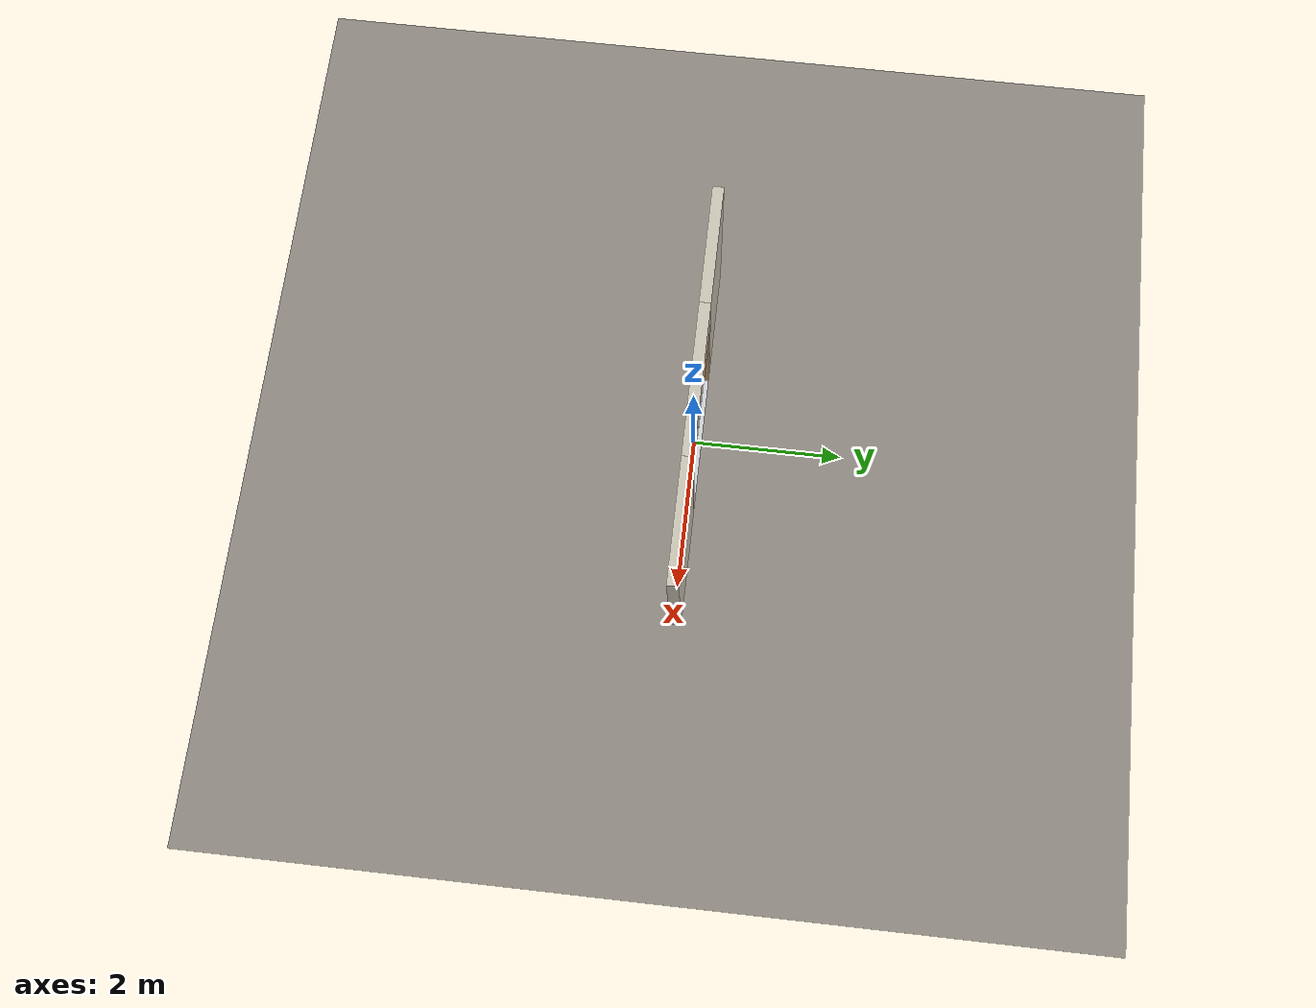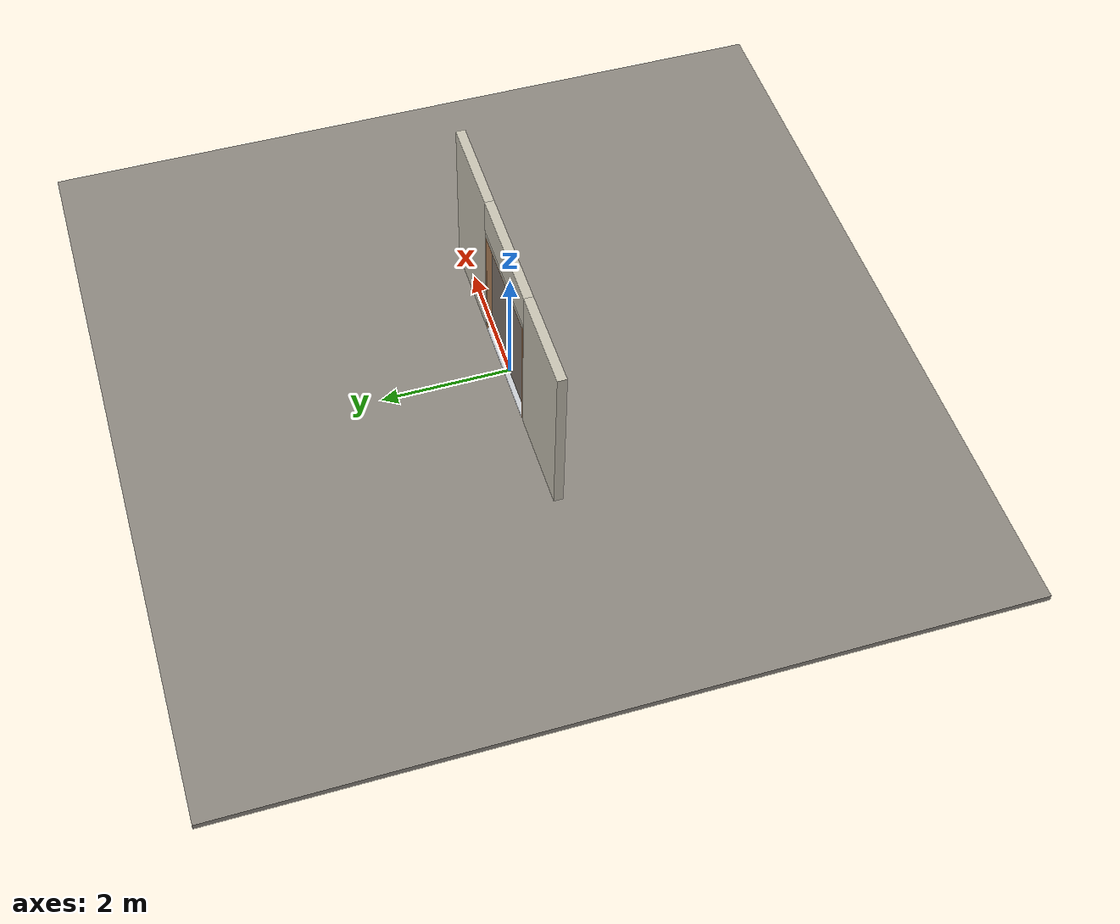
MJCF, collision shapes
<?xml version="1.0" ?>
<mujoco model="db0788_swing_double_minimal">
  <compiler angle="radian" meshdir="../../hardware" texturedir="../../textures" autolimits="true" inertiafromgeom="false"/>
  <option timestep="0.002" integrator="implicitfast" cone="elliptic" impratio="10" noslip_iterations="3">
    <flag multiccd="enable"/>
  </option>
  <size memory="16M"/>
  <default>
    <geom condim="4" solref="0.005 1" solimp="0.95 0.99 0.001"/>
    <joint solreflimit="0.005 1" solimplimit="0.95 0.99 0.001"/>
    <tendon solreflimit="0.005 1"/>
    <equality solref="0.002 1"/>
  </default>
  <visual>
    <headlight ambient="0.4 0.4 0.4" diffuse="0.7 0.7 0.7" specular="0.2 0.2 0.2"/>
    <quality shadowsize="4096"/>
    <map znear="0.01" zfar="60"/>
  </visual>
  <asset>
    <mesh name="pull_2b47e55ff8" file="pull_2b47e55ff8.obj"/>
    <material name="mat_floor" rgba="0.55 0.53 0.5 1" specular="0.2" shininess="0.15" reflectance="0"/>
    <material name="mat_wall" rgba="0.78 0.76 0.7 1" specular="0.2" shininess="0.1" reflectance="0"/>
    <material name="mat_leaf_a" rgba="0.5 0.46 0.425 1" specular="0.2" shininess="0.15" reflectance="0"/>
    <material name="mat_leaf_a_brace" rgba="0.45 0.414 0.383 1" specular="0.2" shininess="0.2" reflectance="0"/>
    <material name="mat_hinge" rgba="0.65 0.66 0.68 1" specular="0.74" shininess="0.5" reflectance="0.36"/>
    <material name="mat_op_black_matte_metal" rgba="0.05 0.05 0.05 1" specular="0.38" shininess="0.3" reflectance="0.12"/>
    <material name="mat_op_brass" rgba="0.85 0.66 0.3 1" specular="0.8" shininess="0.75" reflectance="0.4"/>
    <material name="mat_leaf_b" rgba="0.5 0.46 0.425 1" specular="0.2" shininess="0.15" reflectance="0"/>
    <material name="mat_leaf_b_brace" rgba="0.45 0.414 0.383 1" specular="0.2" shininess="0.2" reflectance="0"/>
    <material name="mat_frame" rgba="0.75 0.55 0.38 1" specular="0.2" shininess="0.45" reflectance="0"/>
    <material name="mat_threshold" rgba="0.8 0.81 0.83 1" specular="0.8" shininess="0.6" reflectance="0.4"/>
    <texture name="skybox" type="skybox" builtin="gradient" rgb1="0.6 0.7 0.85" rgb2="0.9 0.92 0.95" width="256" height="256"/>
  </asset>
  <worldbody>
    <light name="sun" pos="1.5 -2.5 4" dir="-0.3 0.5 -0.8" directional="true" diffuse="0.8 0.8 0.8" specular="0.3 0.3 0.3" castshadow="true"/>
    <light name="fill" pos="-1.5 2.5 3" dir="0.3 -0.5 -0.7" directional="true" diffuse="0.35 0.35 0.4" castshadow="false"/>
    <camera name="robot_view" pos="0 -2.481688 1.709912" xyaxes="1 0 0 0 0.26963 0.962964" fovy="52"/>
    <camera name="far_view" pos="0 2.542687 1.709912" xyaxes="-1 0 0 0 -0.26963 0.962964" fovy="52"/>
    <camera name="iso" pos="-1.909262 -2.079738 2.111862" xyaxes="0.741536 -0.670913 0 0.242917 0.268487 0.932151" fovy="46"/>
    <camera name="detail_handle" pos="0.0735 -0.867 1.33" xyaxes="0.97561 0.219512 0 -0.070934 0.315262 0.94635" fovy="38"/>
    <geom name="floor" type="box" size="6 6 0.05" pos="0 0 -0.05" material="mat_floor" group="0" contype="1" conaffinity="1" friction="0.8 0.005 0.0001" density="2400"/>
    <geom name="wall_left" type="box" size="0.76775 0.0725 1.35" pos="-1.73225 0.0305 1.35" material="mat_wall" group="0" contype="1" conaffinity="1" friction="0.6 0.005 0.0001" density="800"/>
    <geom name="wall_right" type="box" size="0.76775 0.0725 1.35" pos="1.73225 0.0305 1.35" material="mat_wall" group="0" contype="1" conaffinity="1" friction="0.6 0.005 0.0001" density="800"/>
    <geom name="wall_header" type="box" size="0.9645 0.0725 0.2985" pos="0 0.0305 2.4015" material="mat_wall" group="0" contype="1" conaffinity="1" friction="0.6 0.005 0.0001" density="800"/>
    <geom name="jamb_l" type="box" size="0.0095 0.0725 1.0065" pos="-0.914 0.0305 1.0065" material="mat_frame" group="0" contype="1" conaffinity="1" friction="0.6 0.005 0.0001" density="300"/>
    <geom name="jamb_r" type="box" size="0.0095 0.0725 1.0065" pos="0.914 0.0305 1.0065" material="mat_frame" group="0" contype="1" conaffinity="1" friction="0.6 0.005 0.0001" density="300"/>
    <geom name="jamb_head" type="box" size="0.9235 0.0725 0.0095" pos="0 0.0305 2.0225" material="mat_frame" group="0" contype="1" conaffinity="1" friction="0.6 0.005 0.0001" density="300"/>
    <geom name="head_stud" type="box" size="0.9235 0.0725 0.015" pos="0 0.0305 2.047" material="mat_wall" group="0" contype="1" conaffinity="1" friction="0.6 0.005 0.0001" density="500"/>
    <geom name="threshold" type="box" size="0.9235 0.0725 0.0065" pos="0 0.0305 0.0065" material="mat_threshold" group="0" contype="1" conaffinity="1" friction="0.5 0.005 0.0001" density="2700"/>
    <site name="approach_point" pos="0 -1.5 0" quat="1 0 0 0" size="0.05" rgba="0.2 0.9 0.2 0.5" group="4"/>
    <site name="goal_point" pos="0 1.5 0" quat="1 0 0 0" size="0.05" rgba="0.2 0.9 0.2 0.5" group="4"/>
    <site name="door_plane_center" pos="0 0 1.0065" quat="1 0 0 0" size="0.02" rgba="0.2 0.9 0.2 0.5" group="4"/>
    <site name="approach_point_2" pos="0 -1.5 0" quat="1 0 0 0" size="0.05" rgba="0.2 0.9 0.2 0.5" group="4"/>
    <site name="goal_point_2" pos="0 1.5 0" quat="1 0 0 0" size="0.05" rgba="0.2 0.9 0.2 0.5" group="4"/>
    <site name="door_plane_center_2" pos="0 0 1.0065" quat="1 0 0 0" size="0.02" rgba="0.2 0.9 0.2 0.5" group="4"/>
    <site name="approach_point_3" pos="0 -1.5 0" quat="1 0 0 0" size="0.05" rgba="0.2 0.9 0.2 0.5" group="4"/>
    <site name="goal_point_3" pos="0 1.5 0" quat="1 0 0 0" size="0.05" rgba="0.2 0.9 0.2 0.5" group="4"/>
    <site name="door_plane_center_3" pos="0 0 1.0065" quat="1 0 0 0" size="0.02" rgba="0.2 0.9 0.2 0.5" group="4"/>
    <body name="leaf_a" pos="-0.9045 0 0">
      <inertial pos="0.461741 0 1.013937" mass="38.992127" quat="0.50031 -0.50031 -0.499689 -0.499689" diaginertia="2.689710434 12.58840522 15.25859187"/>
      <joint name="leaf_a_hinge" type="hinge" axis="0 0 -1" pos="0.003 -0.029 0" limited="true" range="0 1.396263" damping="0.286983" frictionloss="3.681024" armature="0.02"/>
      <geom name="leaf_a_slab" type="box" size="0.45 0.022 0.996" pos="0.453 0 1.013" material="mat_leaf_a" group="0" contype="1" conaffinity="1" friction="0.45 0.005 0.0001" density="1"/>
      <geom name="leaf_a_pull_n" type="mesh" mesh="pull_2b47e55ff8" pos="0.798 -0.022 1.05" quat="0.707107 0.707107 0 0" material="mat_op_black_matte_metal" group="1" contype="0" conaffinity="0" density="3000"/>
      <geom name="leaf_a_pull_col_n" type="capsule" size="0.006 0.13" pos="0.798 -0.067 1.05" material="mat_op_black_matte_metal" group="3" contype="1" conaffinity="1" rgba="0.8 0.3 0.3 0.25" friction="0.7 0.01 0.0001" density="3000"/>
      <geom name="leaf_a_pull_p" type="mesh" mesh="pull_2b47e55ff8" pos="0.798 0.022 1.05" quat="-0.707107 0.707107 0 0" material="mat_op_black_matte_metal" group="1" contype="0" conaffinity="0" density="3000"/>
      <geom name="leaf_a_pull_col_p" type="capsule" size="0.006 0.13" pos="0.798 0.067 1.05" material="mat_op_black_matte_metal" group="3" contype="1" conaffinity="1" rgba="0.8 0.3 0.3 0.25" friction="0.7 0.01 0.0001" density="3000"/>
      <site name="leaf_a_pull_grip_n" pos="0.798 -0.067 1.05" quat="1 0 0 0" size="0.012" rgba="0.2 0.9 0.2 0.5" group="4"/>
      <site name="leaf_a_pull_grip_p" pos="0.798 0.067 1.05" quat="1 0 0 0" size="0.012" rgba="0.2 0.9 0.2 0.5" group="4"/>
      <site name="leaf_a_edge_mid" pos="0.903 0 0.996" quat="1 0 0 0" size="0.02" rgba="0.2 0.9 0.2 0.5" group="4"/>
    </body>
    <body name="leaf_b" pos="0.9045 0 0">
      <inertial pos="-0.423062 0 1.013" mass="38.72809" quat="-0.5 0.5 0.5 0.5" diaginertia="2.284233274 12.812538978 15.084275953"/>
      <joint name="leaf_b_hinge" type="hinge" axis="0 0 1" pos="-0.003 -0.029 0" limited="true" range="0 0.001" damping="0.286983" frictionloss="3.681024" armature="0.02"/>
      <geom name="leaf_b_edge_1300_wall_n" type="box" size="0.03 0.024 0.01" pos="-0.873 -0.002 1.3" material="mat_leaf_b" group="0" contype="1" conaffinity="1" friction="0.6 0.005 0.0001" density="1"/>
      <geom name="leaf_b_edge_1300_wall_p" type="box" size="0.022 0.003 0.01" pos="-0.881 -0.045 1.3" material="mat_leaf_b" group="0" contype="1" conaffinity="1" friction="0.6 0.005 0.0001" density="1"/>
      <geom name="leaf_b_edge_1300_back" type="box" size="0.009 0.008 0.01" pos="-0.852 -0.034 1.3" material="mat_leaf_b" group="0" contype="1" conaffinity="1" friction="0.6 0.005 0.0001" density="1"/>
      <geom name="leaf_b_edge_seg_0" type="box" size="0.03 0.022 0.6365" pos="-0.873 0 0.6535" material="mat_leaf_b" group="0" contype="1" conaffinity="1" friction="0.6 0.005 0.0001" density="1"/>
      <geom name="leaf_b_edge_seg_1" type="box" size="0.03 0.022 0.3495" pos="-0.873 0 1.6595" material="mat_leaf_b" group="0" contype="1" conaffinity="1" friction="0.6 0.005 0.0001" density="1"/>
      <geom name="leaf_b_slab" type="box" size="0.42 0.022 0.996" pos="-0.423 0 1.013" material="mat_leaf_b" group="0" contype="1" conaffinity="1" friction="0.45 0.005 0.0001" density="1"/>
      <site name="leaf_b_edge_mid" pos="-0.903 0 0.996" quat="1 0 0 0" size="0.02" rgba="0.2 0.9 0.2 0.5" group="4"/>
    </body>
  </worldbody>
  <sensor>
    <jointpos name="leaf_a_hinge_pos" joint="leaf_a_hinge"/>
    <jointvel name="leaf_a_hinge_vel" joint="leaf_a_hinge"/>
    <jointpos name="leaf_b_hinge_pos" joint="leaf_b_hinge"/>
    <jointvel name="leaf_b_hinge_vel" joint="leaf_b_hinge"/>
  </sensor>
</mujoco>
